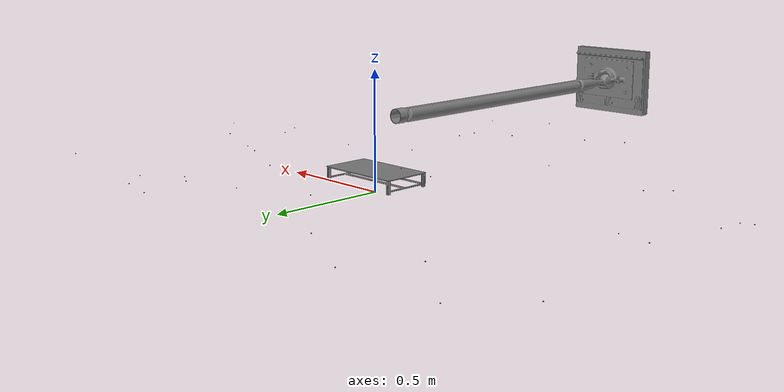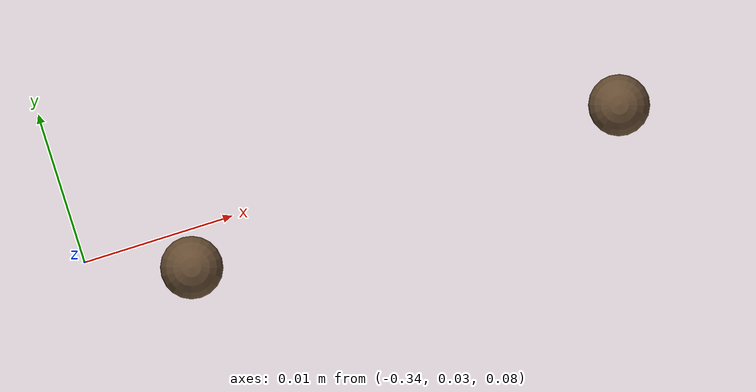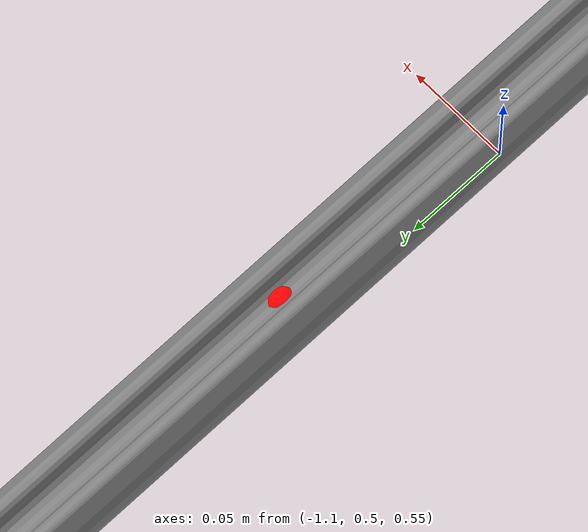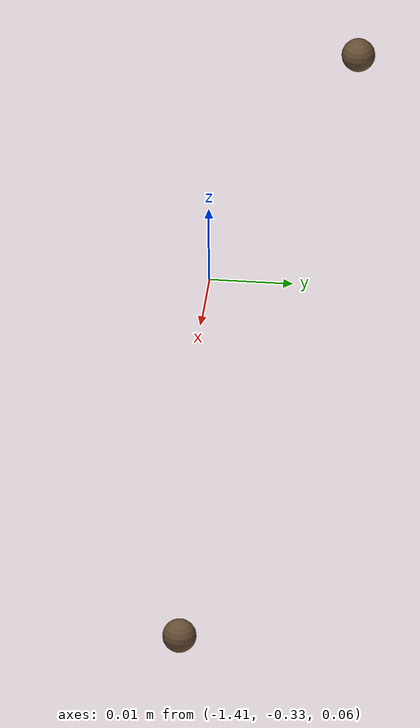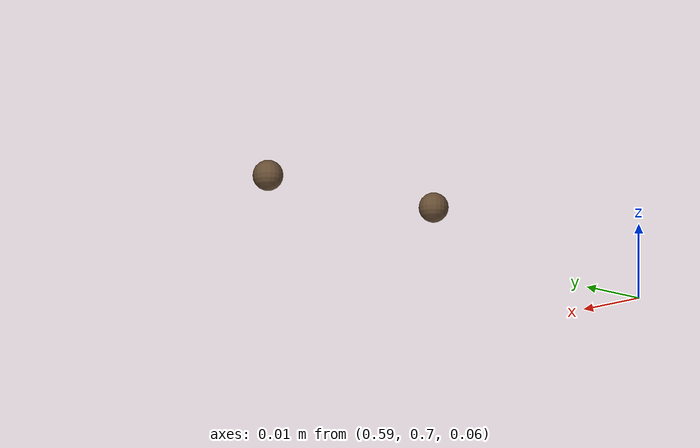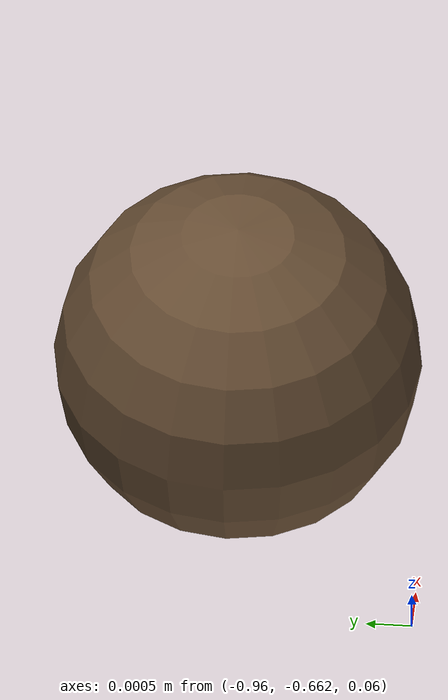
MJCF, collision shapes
<?xml version="1.0" encoding="UTF-8"?>
<mujoco model="ur5e_with_mop">
  <compiler angle="radian" meshdir="assets" autolimits="true" />
  <option integrator="implicitfast" timestep="0.01" />

  <default>
    <default class="ur5e">
      <default class="visual">
        <geom type="mesh" contype="0" conaffinity="0" group="2" />
      </default>
      <default class="collision">
        <geom type="capsule" group="3" />
        <default class="eef_collision">
          <geom type="cylinder" />
        </default>
      </default>
      <joint axis="0 1 0" range="-6.28319 6.28319" />
      <default class="joint_limited">
        <joint range="-3.1415 3.1415" />
      </default>
      <default class="position">
        <position ctrlrange="-6.2831 6.2831" kp="2000" kv="100" forcerange="-150 150" />
        <default class="position_limited">
          <position ctrlrange="-3.1415 3.1415" />
        </default>
        <default class="position_small">
          <position kp="500" kv="25" forcerange="-28 28" />
        </default>
      </default>
    </default>
  </default>

  <asset>
    <material name="black" rgba="0.033 0.033 0.033 1" />
    <material name="jointgray" rgba="0.278 0.278 0.278 1" />
    <material name="linkgray" rgba="0.82 0.82 0.82 1" />
    <material name="urblue" rgba="0.49 0.678 0.8 1" />
    <material name="table_material" rgba="0.6 0.4 0.2 1" />

    <mesh file="base_0.obj" />
    <mesh file="base_1.obj" />
    <mesh file="shoulder_0.obj" />
    <mesh file="shoulder_1.obj" />
    <mesh file="shoulder_2.obj" />
    <mesh file="upperarm_0.obj" />
    <mesh file="upperarm_1.obj" />
    <mesh file="upperarm_2.obj" />
    <mesh file="upperarm_3.obj" />
    <mesh file="forearm_0.obj" />
    <mesh file="forearm_1.obj" />
    <mesh file="forearm_2.obj" />
    <mesh file="forearm_3.obj" />
    <mesh file="wrist1_0.obj" />
    <mesh file="wrist1_1.obj" />
    <mesh file="wrist1_2.obj" />
    <mesh file="wrist2_0.obj" />
    <mesh file="wrist2_1.obj" />
    <mesh file="wrist2_2.obj" />
    <mesh file="wrist3.obj" />

    <mesh file="test.stl" scale="0.28 0.29 0.1" name="table" />

    <mesh name="base_mesh" file="mop_base.obj" scale="0.002 0.002 0.002" />
    <mesh name="handle_mesh" file="mop_handle.obj" scale="0.002 0.002 0.002" />
  <material name="dust_material" rgba="0.4 0.3 0.2 1" />
</asset>

  <worldbody>
    <body name="table" pos="0.3 0 0">
      <inertial mass="50" pos="0 0 0.4" diaginertia="10 10 5" />
      <geom name="table_visual" type="mesh" mesh="table" material="table_material" class="visual" />
      <geom name="table_collision" type="mesh" mesh="table" group="3" class="collision" />
    </body>

    <body name="base" pos="-0.875 -0.2 0.5" quat="1 0 0 1" childclass="ur5e">
      <inertial mass="4" pos="0 0 0" diaginertia="0.0044 0.0044 0.0072" />
      <geom mesh="base_0" material="black" class="visual" />
      <geom mesh="base_1" material="jointgray" class="visual" />

      <body name="shoulder_link" pos="0 0 0.163">
        <inertial mass="3.7" pos="0 0 0" diaginertia="0.0102 0.0102 0.0066" />
        <joint name="shoulder_pan" axis="0 0 1" />
        <geom mesh="shoulder_0" material="urblue" class="visual" />
        <geom mesh="shoulder_1" material="black" class="visual" />
        <geom mesh="shoulder_2" material="jointgray" class="visual" />

        <body name="upper_arm_link" pos="0 0.138 0" quat="1 0 1 0">
          <inertial mass="8.39" pos="0 0 0.2125" diaginertia="0.133 0.133 0.015" />
          <joint name="shoulder_lift" />
          <geom mesh="upperarm_0" material="linkgray" class="visual" />
          <geom mesh="upperarm_1" material="black" class="visual" />
          <geom mesh="upperarm_2" material="jointgray" class="visual" />
          <geom mesh="upperarm_3" material="urblue" class="visual" />

          <body name="forearm_link" pos="0 -0.131 0.425">
            <inertial mass="2.27" pos="0 0 0.196" diaginertia="0.031 0.031 0.004" />
            <joint name="elbow" class="joint_limited" />
            <geom mesh="forearm_0" material="urblue" class="visual" />
            <geom mesh="forearm_1" material="linkgray" class="visual" />
            <geom mesh="forearm_2" material="black" class="visual" />
            <geom mesh="forearm_3" material="jointgray" class="visual" />

            <body name="wrist_1_link" pos="0 0 0.392" quat="1 0 1 0">
              <inertial mass="1.219" pos="0 0.127 0" diaginertia="0.0025 0.0025 0.0021" />
              <joint name="wrist_1" />
              <geom mesh="wrist1_0" material="black" class="visual" />
              <geom mesh="wrist1_1" material="urblue" class="visual" />
              <geom mesh="wrist1_2" material="jointgray" class="visual" />

              <body name="wrist_2_link" pos="0 0.127 0">
                <inertial mass="1.219" pos="0 0 0.1" diaginertia="0.0025 0.0025 0.0021" />
                <joint name="wrist_2" axis="0 0 1" />
                <geom mesh="wrist2_0" material="black" class="visual" />
                <geom mesh="wrist2_1" material="urblue" class="visual" />
                <geom mesh="wrist2_2" material="jointgray" class="visual" />

                <body name="wrist_3_link" pos="0 0 0.1">
                  <inertial mass="0.188" pos="0 0.077 0" diaginertia="0.00013 0.0001 0.0001" />
                  <joint name="wrist_3" />
                  <geom mesh="wrist3" material="linkgray" class="visual" />
                  <site name="ee_site" pos="0 0.08 0" size="0.01" rgba="1 0 0 1" />

                  <body name="mop_mount" pos="0 0.08 0" quat="1 0 0 1">

                    <body name="mop_tool" pos="0 -0.6 0">
                      <geom type="mesh" mesh="handle_mesh" density="500" friction="0.8 0.1 0.1" />
                      <body name="mop_head">

                        <joint name="mop_socket" type="ball" damping="0.5" limited="false" />
                        <geom type="mesh" mesh="base_mesh" density="500" friction="0.8 0.1 0.1" pos="0 -0.05 -0.1" />
                      </body>
                    </body>
                  </body>

                </body>
              </body>
            </body>
          </body>
        </body>
      </body>
    </body>
  <body name="dust_particle_1" pos="0.237010 -0.871406 0.095010">
<inertial mass="0.001" diaginertia="0.0001 0.0001 0.0001" />
<geom name="dust_geom_1" type="sphere" size="0.002" material="dust_material" density="1000" friction="0.7 0.1 0.05" condim="3" />
</body>
<body name="dust_particle_2" pos="0.587100 0.772864 0.064606">
<inertial mass="0.001" diaginertia="0.0001 0.0001 0.0001" />
<geom name="dust_geom_2" type="sphere" size="0.002" material="dust_material" density="1000" friction="0.7 0.1 0.05" condim="3" />
</body>
<body name="dust_particle_3" pos="-1.336841 -0.325990 0.058484">
<inertial mass="0.001" diaginertia="0.0001 0.0001 0.0001" />
<geom name="dust_geom_3" type="sphere" size="0.002" material="dust_material" density="1000" friction="0.7 0.1 0.05" condim="3" />
</body>
<body name="dust_particle_4" pos="-0.518719 -0.991128 0.140804">
<inertial mass="0.001" diaginertia="0.0001 0.0001 0.0001" />
<geom name="dust_geom_4" type="sphere" size="0.002" material="dust_material" density="1000" friction="0.7 0.1 0.05" condim="3" />
</body>
<body name="dust_particle_5" pos="-0.870900 0.977501 0.111625">
<inertial mass="0.001" diaginertia="0.0001 0.0001 0.0001" />
<geom name="dust_geom_5" type="sphere" size="0.002" material="dust_material" density="1000" friction="0.7 0.1 0.05" condim="3" />
</body>
<body name="dust_particle_6" pos="-0.154241 0.006480 0.124379">
<inertial mass="0.001" diaginertia="0.0001 0.0001 0.0001" />
<geom name="dust_geom_6" type="sphere" size="0.002" material="dust_material" density="1000" friction="0.7 0.1 0.05" condim="3" />
</body>
<body name="dust_particle_7" pos="-1.406206 0.231765 0.141077">
<inertial mass="0.001" diaginertia="0.0001 0.0001 0.0001" />
<geom name="dust_geom_7" type="sphere" size="0.002" material="dust_material" density="1000" friction="0.7 0.1 0.05" condim="3" />
</body>
<body name="dust_particle_8" pos="-1.253234 0.158080 0.121640">
<inertial mass="0.001" diaginertia="0.0001 0.0001 0.0001" />
<geom name="dust_geom_8" type="sphere" size="0.002" material="dust_material" density="1000" friction="0.7 0.1 0.05" condim="3" />
</body>
<body name="dust_particle_9" pos="0.120821 0.595798 0.098485">
<inertial mass="0.001" diaginertia="0.0001 0.0001 0.0001" />
<geom name="dust_geom_9" type="sphere" size="0.002" material="dust_material" density="1000" friction="0.7 0.1 0.05" condim="3" />
</body>
<body name="dust_particle_10" pos="-1.417474 0.744786 0.094675">
<inertial mass="0.001" diaginertia="0.0001 0.0001 0.0001" />
<geom name="dust_geom_10" type="sphere" size="0.002" material="dust_material" density="1000" friction="0.7 0.1 0.05" condim="3" />
</body>
<body name="dust_particle_11" pos="-1.162248 0.859188 0.052566">
<inertial mass="0.001" diaginertia="0.0001 0.0001 0.0001" />
<geom name="dust_geom_11" type="sphere" size="0.002" material="dust_material" density="1000" friction="0.7 0.1 0.05" condim="3" />
</body>
<body name="dust_particle_12" pos="0.628931 0.698642 0.078436">
<inertial mass="0.001" diaginertia="0.0001 0.0001 0.0001" />
<geom name="dust_geom_12" type="sphere" size="0.002" material="dust_material" density="1000" friction="0.7 0.1 0.05" condim="3" />
</body>
<body name="dust_particle_13" pos="0.812734 0.105044 0.193152">
<inertial mass="0.001" diaginertia="0.0001 0.0001 0.0001" />
<geom name="dust_geom_13" type="sphere" size="0.002" material="dust_material" density="1000" friction="0.7 0.1 0.05" condim="3" />
</body>
<body name="dust_particle_14" pos="0.513141 0.250972 0.151026">
<inertial mass="0.001" diaginertia="0.0001 0.0001 0.0001" />
<geom name="dust_geom_14" type="sphere" size="0.002" material="dust_material" density="1000" friction="0.7 0.1 0.05" condim="3" />
</body>
<body name="dust_particle_15" pos="-0.304033 0.029359 0.086528">
<inertial mass="0.001" diaginertia="0.0001 0.0001 0.0001" />
<geom name="dust_geom_15" type="sphere" size="0.002" material="dust_material" density="1000" friction="0.7 0.1 0.05" condim="3" />
</body>
<body name="dust_particle_16" pos="-0.232341 -0.577089 0.187299">
<inertial mass="0.001" diaginertia="0.0001 0.0001 0.0001" />
<geom name="dust_geom_16" type="sphere" size="0.002" material="dust_material" density="1000" friction="0.7 0.1 0.05" condim="3" />
</body>
<body name="dust_particle_17" pos="-1.409420 -0.312137 0.093351">
<inertial mass="0.001" diaginertia="0.0001 0.0001 0.0001" />
<geom name="dust_geom_17" type="sphere" size="0.002" material="dust_material" density="1000" friction="0.7 0.1 0.05" condim="3" />
</body>
<body name="dust_particle_18" pos="-0.333234 0.027643 0.124909">
<inertial mass="0.001" diaginertia="0.0001 0.0001 0.0001" />
<geom name="dust_geom_18" type="sphere" size="0.002" material="dust_material" density="1000" friction="0.7 0.1 0.05" condim="3" />
</body>
<body name="dust_particle_19" pos="-0.957897 -0.659940 0.061879">
<inertial mass="0.001" diaginertia="0.0001 0.0001 0.0001" />
<geom name="dust_geom_19" type="sphere" size="0.002" material="dust_material" density="1000" friction="0.7 0.1 0.05" condim="3" />
</body>
<body name="dust_particle_20" pos="-0.511117 0.763324 0.090758">
<inertial mass="0.001" diaginertia="0.0001 0.0001 0.0001" />
<geom name="dust_geom_20" type="sphere" size="0.002" material="dust_material" density="1000" friction="0.7 0.1 0.05" condim="3" />
</body>
<body name="dust_particle_21" pos="-0.387234 -0.632750 0.074289">
<inertial mass="0.001" diaginertia="0.0001 0.0001 0.0001" />
<geom name="dust_geom_21" type="sphere" size="0.002" material="dust_material" density="1000" friction="0.7 0.1 0.05" condim="3" />
</body>
<body name="dust_particle_22" pos="0.006272 -0.216365 0.142087">
<inertial mass="0.001" diaginertia="0.0001 0.0001 0.0001" />
<geom name="dust_geom_22" type="sphere" size="0.002" material="dust_material" density="1000" friction="0.7 0.1 0.05" condim="3" />
</body>
<body name="dust_particle_23" pos="0.604817 -0.397238 0.052401">
<inertial mass="0.001" diaginertia="0.0001 0.0001 0.0001" />
<geom name="dust_geom_23" type="sphere" size="0.002" material="dust_material" density="1000" friction="0.7 0.1 0.05" condim="3" />
</body>
<body name="dust_particle_24" pos="-0.034873 -0.464281 0.174683">
<inertial mass="0.001" diaginertia="0.0001 0.0001 0.0001" />
<geom name="dust_geom_24" type="sphere" size="0.002" material="dust_material" density="1000" friction="0.7 0.1 0.05" condim="3" />
</body>
<body name="dust_particle_25" pos="0.126628 -0.872097 0.167874">
<inertial mass="0.001" diaginertia="0.0001 0.0001 0.0001" />
<geom name="dust_geom_25" type="sphere" size="0.002" material="dust_material" density="1000" friction="0.7 0.1 0.05" condim="3" />
</body>
<body name="dust_particle_26" pos="0.694334 0.934225 0.192981">
<inertial mass="0.001" diaginertia="0.0001 0.0001 0.0001" />
<geom name="dust_geom_26" type="sphere" size="0.002" material="dust_material" density="1000" friction="0.7 0.1 0.05" condim="3" />
</body>
<body name="dust_particle_27" pos="0.109036 0.820352 0.164633">
<inertial mass="0.001" diaginertia="0.0001 0.0001 0.0001" />
<geom name="dust_geom_27" type="sphere" size="0.002" material="dust_material" density="1000" friction="0.7 0.1 0.05" condim="3" />
</body>
<body name="dust_particle_28" pos="0.776480 -0.213934 0.133759">
<inertial mass="0.001" diaginertia="0.0001 0.0001 0.0001" />
<geom name="dust_geom_28" type="sphere" size="0.002" material="dust_material" density="1000" friction="0.7 0.1 0.05" condim="3" />
</body>
<body name="dust_particle_29" pos="0.690307 -0.088104 0.140394">
<inertial mass="0.001" diaginertia="0.0001 0.0001 0.0001" />
<geom name="dust_geom_29" type="sphere" size="0.002" material="dust_material" density="1000" friction="0.7 0.1 0.05" condim="3" />
</body>
<body name="dust_particle_30" pos="-0.193739 -0.885205 0.194639">
<inertial mass="0.001" diaginertia="0.0001 0.0001 0.0001" />
<geom name="dust_geom_30" type="sphere" size="0.002" material="dust_material" density="1000" friction="0.7 0.1 0.05" condim="3" />
</body>
<body name="dust_particle_31" pos="-1.173880 -0.098346 0.199012">
<inertial mass="0.001" diaginertia="0.0001 0.0001 0.0001" />
<geom name="dust_geom_31" type="sphere" size="0.002" material="dust_material" density="1000" friction="0.7 0.1 0.05" condim="3" />
</body>
<body name="dust_particle_32" pos="0.125114 0.980673 0.147530">
<inertial mass="0.001" diaginertia="0.0001 0.0001 0.0001" />
<geom name="dust_geom_32" type="sphere" size="0.002" material="dust_material" density="1000" friction="0.7 0.1 0.05" condim="3" />
</body>
<body name="dust_particle_33" pos="0.185435 0.388367 0.141987">
<inertial mass="0.001" diaginertia="0.0001 0.0001 0.0001" />
<geom name="dust_geom_33" type="sphere" size="0.002" material="dust_material" density="1000" friction="0.7 0.1 0.05" condim="3" />
</body>
<body name="dust_particle_34" pos="-0.191405 0.498917 0.110609">
<inertial mass="0.001" diaginertia="0.0001 0.0001 0.0001" />
<geom name="dust_geom_34" type="sphere" size="0.002" material="dust_material" density="1000" friction="0.7 0.1 0.05" condim="3" />
</body>
<body name="dust_particle_35" pos="-1.407240 -0.421459 0.066409">
<inertial mass="0.001" diaginertia="0.0001 0.0001 0.0001" />
<geom name="dust_geom_35" type="sphere" size="0.002" material="dust_material" density="1000" friction="0.7 0.1 0.05" condim="3" />
</body>
<body name="dust_particle_36" pos="-0.880083 0.624268 0.051070">
<inertial mass="0.001" diaginertia="0.0001 0.0001 0.0001" />
<geom name="dust_geom_36" type="sphere" size="0.002" material="dust_material" density="1000" friction="0.7 0.1 0.05" condim="3" />
</body>
<body name="dust_particle_37" pos="0.415253 0.289098 0.152434">
<inertial mass="0.001" diaginertia="0.0001 0.0001 0.0001" />
<geom name="dust_geom_37" type="sphere" size="0.002" material="dust_material" density="1000" friction="0.7 0.1 0.05" condim="3" />
</body>
<body name="dust_particle_38" pos="0.718874 0.193258 0.168422">
<inertial mass="0.001" diaginertia="0.0001 0.0001 0.0001" />
<geom name="dust_geom_38" type="sphere" size="0.002" material="dust_material" density="1000" friction="0.7 0.1 0.05" condim="3" />
</body>
<body name="dust_particle_39" pos="-0.392998 -0.873913 0.150154">
<inertial mass="0.001" diaginertia="0.0001 0.0001 0.0001" />
<geom name="dust_geom_39" type="sphere" size="0.002" material="dust_material" density="1000" friction="0.7 0.1 0.05" condim="3" />
</body>
<body name="dust_particle_40" pos="0.354023 0.667130 0.113643">
<inertial mass="0.001" diaginertia="0.0001 0.0001 0.0001" />
<geom name="dust_geom_40" type="sphere" size="0.002" material="dust_material" density="1000" friction="0.7 0.1 0.05" condim="3" />
</body>
</worldbody>

  <actuator>
    <position class="position" name="shoulder_pan_act" joint="shoulder_pan" />
    <position class="position" name="shoulder_lift_act" joint="shoulder_lift" />
    <position class="position_limited" name="elbow_act" joint="elbow" />
    <position class="position_small" name="wrist_1_act" joint="wrist_1" />
    <position class="position_small" name="wrist_2_act" joint="wrist_2" />
    <position class="position_small" name="wrist_3_act" joint="wrist_3" />
  </actuator>

</mujoco>
